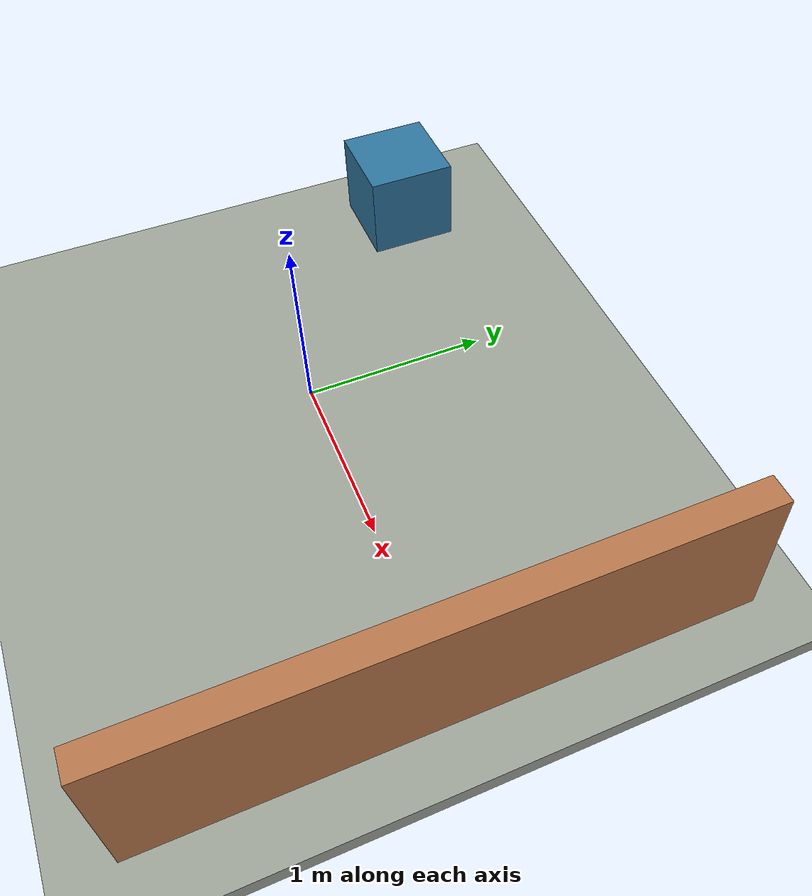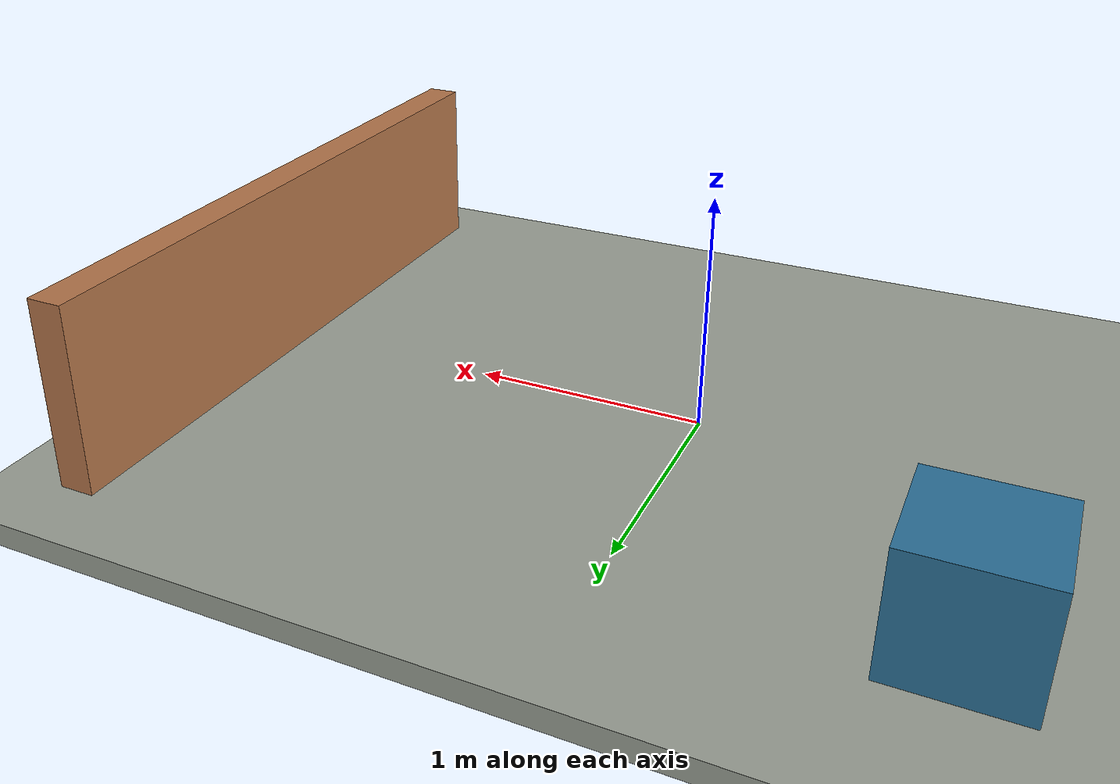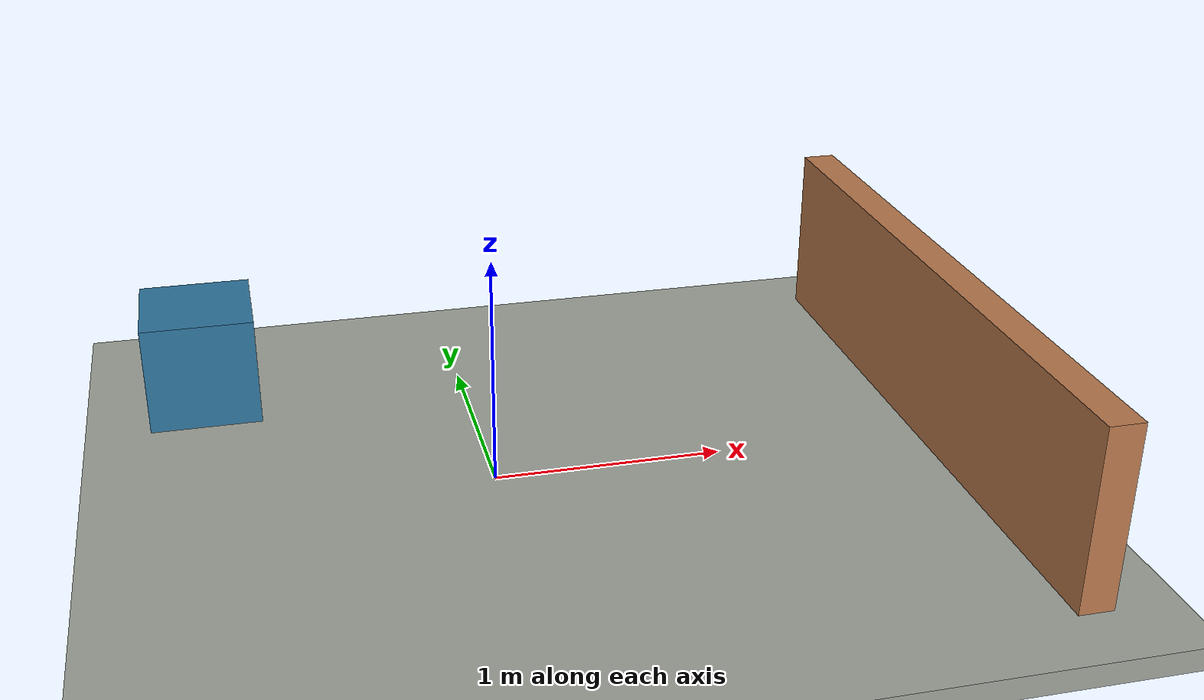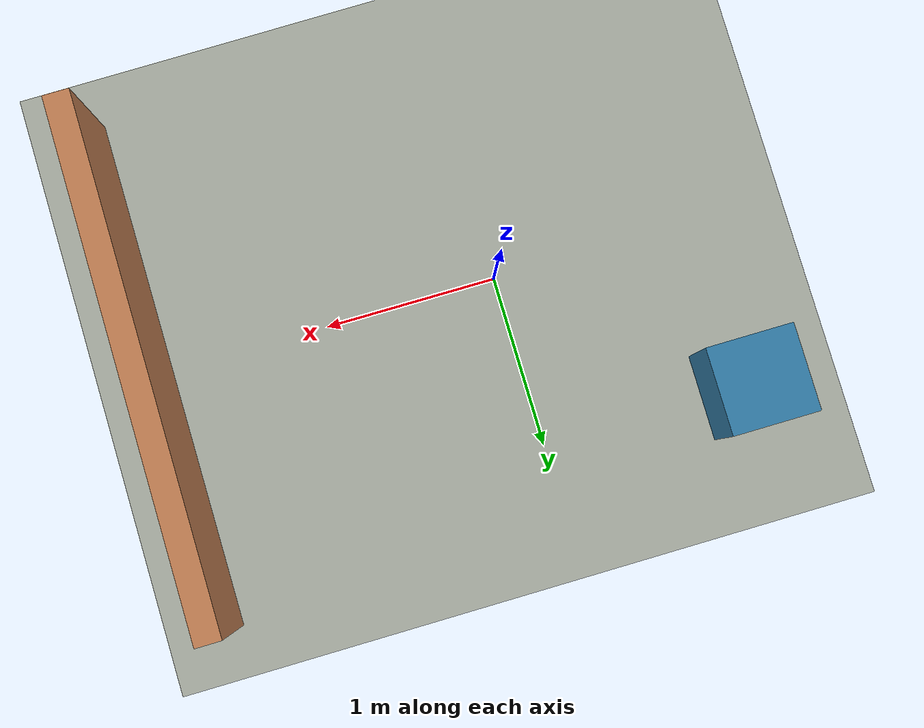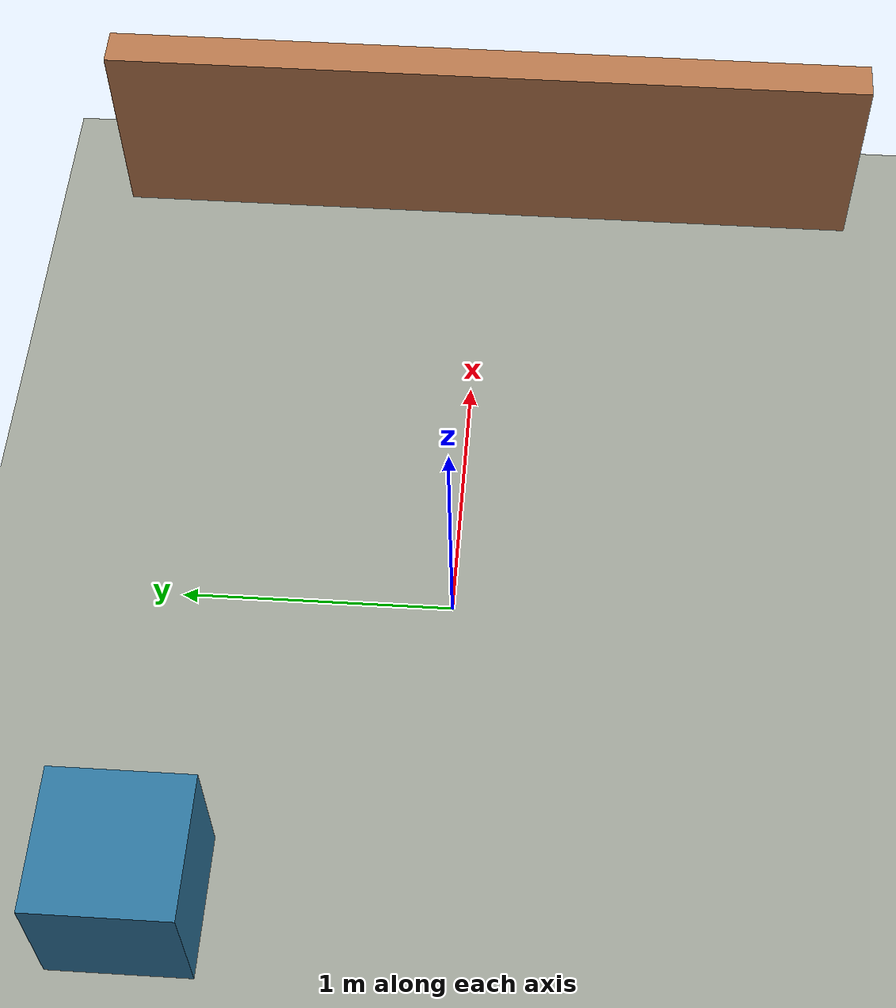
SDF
<?xml version="1.0"?>
<sdf version="1.9">
  <world name="empty">
    <physics name="rover_physics" type="ignored">
      <max_step_size>0.002</max_step_size>
      <real_time_factor>1.0</real_time_factor>
    </physics>

    <plugin filename="gz-sim-physics-system" name="gz::sim::systems::Physics"/>
    <plugin filename="gz-sim-user-commands-system" name="gz::sim::systems::UserCommands"/>
    <plugin filename="gz-sim-scene-broadcaster-system" name="gz::sim::systems::SceneBroadcaster"/>
    <plugin filename="gz-sim-sensors-system" name="gz::sim::systems::Sensors">
      <render_engine>ogre2</render_engine>
    </plugin>
    <plugin filename="gz-sim-imu-system" name="gz::sim::systems::Imu"/>

    <gravity>0 0 -9.81</gravity>
    <magnetic_field>6e-6 2.3e-5 -4.2e-5</magnetic_field>
    <atmosphere type="adiabatic"/>

    <light type="directional" name="sun">
      <cast_shadows>true</cast_shadows>
      <pose>0 0 10 0 0 0</pose>
      <diffuse>0.8 0.8 0.8 1</diffuse>
      <specular>0.2 0.2 0.2 1</specular>
      <direction>-0.5 0.2 -0.9</direction>
    </light>

    <model name="ground_plane">
      <static>true</static>
      <link name="ground">
        <collision name="collision"><geometry><box><size>12 12 0.1</size></box></geometry></collision>
        <visual name="visual">
          <geometry><box><size>12 12 0.1</size></box></geometry>
          <material><ambient>0.52 0.54 0.50 1</ambient><diffuse>0.62 0.64 0.60 1</diffuse></material>
        </visual>
        <pose>0 0 -0.05 0 0 0</pose>
      </link>
    </model>

    <model name="test_wall">
      <static>true</static>
      <pose>2 0 0.4 0 0 0</pose>
      <link name="wall">
        <collision name="collision"><geometry><box><size>0.15 3.0 0.8</size></box></geometry></collision>
        <visual name="visual">
          <geometry><box><size>0.15 3.0 0.8</size></box></geometry>
          <material><ambient>0.65 0.42 0.26 1</ambient><diffuse>0.72 0.47 0.30 1</diffuse></material>
        </visual>
      </link>
    </model>

    <model name="test_box">
      <static>true</static>
      <pose>-1.2 1.0 0.25 0 0 0</pose>
      <link name="box">
        <collision name="collision"><geometry><box><size>0.5 0.5 0.5</size></box></geometry></collision>
        <visual name="visual">
          <geometry><box><size>0.5 0.5 0.5</size></box></geometry>
          <material><ambient>0.15 0.38 0.52 1</ambient><diffuse>0.18 0.46 0.62 1</diffuse></material>
        </visual>
      </link>
    </model>
  </world>
</sdf>
